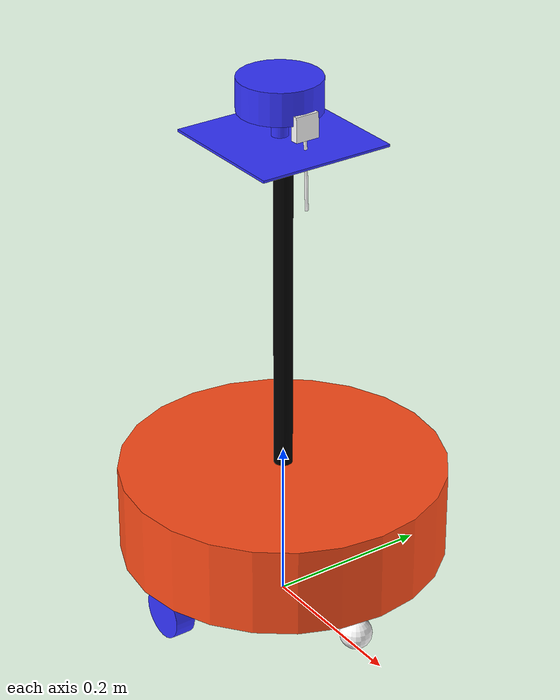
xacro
<?xml version="1.0"?>
<robot xmlns:xacro="http://www.ros.org/wiki/xacro"  name="robot">

    <xacro:arg name="use_ros2_control" default="true"/>
    <xacro:arg name="sim_mode" default="false"/>

    <xacro:include filename="robot_core.xacro" />

    <xacro:if value="$(arg use_ros2_control)">
        <xacro:include filename="ros2_control.xacro" />
    </xacro:if>
    <xacro:unless value="$(arg use_ros2_control)">
        <xacro:include filename="gazebo_control.xacro" />
    </xacro:unless>
    <xacro:include filename="lidar.xacro" />
    <xacro:include filename="depth_camera.xacro" />

</robot>

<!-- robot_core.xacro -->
<robot xmlns:xacro="http://www.ros.org/wiki/xacro" >

    <xacro:include filename="inertial_macros.xacro"/>

    <xacro:property name="chassis_radius" value="0.20"/>
    <xacro:property name="chassis_length" value="0.112"/>
    <xacro:property name="chassis_height" value="0.072"/>
    <xacro:property name="chassis_mass" value="2.0"/>
    <xacro:property name="tripod_radius" value="0.0115"/>
    <xacro:property name="tripod_length" value="0.441"/>
    <xacro:property name="tripod_mass" value="1.0"/>
    <xacro:property name="holder_length" value="0.17"/>
    <xacro:property name="holder_width" value="0.17"/>
    <xacro:property name="holder_height" value="0.003"/>
    <xacro:property name="holder_mass" value="0.1"/>
    <xacro:property name="wheel_radius" value="0.03185"/>
    <xacro:property name="wheel_thickness" value="0.0255"/>
    <xacro:property name="wheel_mass" value="0.05"/>
    <xacro:property name="wheel_offset_x" value="0.0"/>
    <xacro:property name="wheel_offset_y" value="0.164"/>
    <xacro:property name="wheel_offset_z" value="${-chassis_height-chassis_length/2+wheel_radius}"/>
    <xacro:property name="caster_wheel_radius" value="0.02"/>
    <xacro:property name="caster_wheel_mass" value="0.04"/>
    <xacro:property name="caster_wheel_offset_x" value="0.1515"/>
    <xacro:property name="caster_wheel_offset_z" value="${wheel_offset_z - wheel_radius + caster_wheel_radius}"/>

    <material name="white">
        <color rgba="1 1 1 1" />
    </material>

    <material name="orange">
        <color rgba="1 0.3 0.1 1"/>
    </material>

    <material name="blue">
        <color rgba="0.2 0.2 1 1"/>
    </material>

    <material name="black">
        <color rgba="0 0 0 1"/>
    </material>

    <material name="red">
        <color rgba="1 0 0 1"/>
    </material>

    <!-- BASE LINK -->

    <link name="base_link">

    </link>

    <!-- BASE_FOOTPRINT LINK -->

    <joint name="base_footprint_joint" type="fixed">
        <parent link="base_link"/>
        <child link="base_footprint"/>
        <origin xyz="0 0 0" rpy="0 0 0"/>
    </joint>

    <link name="base_footprint">
    </link>

    <!-- CHASSIS LINK -->

    <joint name="chassis_joint" type="fixed">
        <parent link="base_link"/>
        <child link="chassis"/>
        <origin xyz="0 0 ${chassis_height+chassis_length/2}"/>
    </joint>

    <link name="chassis">
        <visual>
            <origin xyz = "0 0 0"/>
            <geometry>
                <cylinder length="${chassis_length}" radius="${chassis_radius}"/>
            </geometry>
            <material name="orange"/>
        </visual>
        <collision>
            <origin xyz = "0 0 ${chassis_length/2}"/>
            <geometry>
                <cylinder length="${chassis_length}" radius="${chassis_radius}"/>
            </geometry>
        </collision>
        <xacro:inertial_cylinder mass="${chassis_mass}" length="${chassis_length}" radius="${chassis_radius}">
            <origin xyz="0 0 ${chassis_length/2}" rpy="0 0 0"/>
        </xacro:inertial_cylinder>
    </link>

    <gazebo reference="chassis">
        <material>Gazebo/Orange</material>
    </gazebo>

    <!-- TRIPOD -->

    <joint name="tripod_joint" type="fixed">
        <parent link="chassis"/>
        <child link="tripod"/>
        <origin xyz="0 0 ${chassis_height/2}"/>
    </joint>

    <link name="tripod">
        <visual>
            <origin xyz = "0 0 ${tripod_length/2}"/>
            <geometry>
                <cylinder length="${tripod_length}" radius="${tripod_radius}"/>
            </geometry>
            <material name="black"/>
        </visual>
        <collision>
            <origin xyz = "0 0 ${tripod_length/2}"/>
            <geometry>
                <cylinder length="${tripod_length}" radius="${tripod_radius}"/>
            </geometry>
        </collision>
        <xacro:inertial_cylinder mass="${tripod_mass}" length="${tripod_length}" radius="${tripod_radius}">
            <origin xyz="0 0 ${tripod_length/2}" rpy="0 0 0"/>
        </xacro:inertial_cylinder>
    </link>

    <gazebo reference="tripod">
        <material>Gazebo/Black</material>
    </gazebo>

    <!-- HOLDER -->

    <joint name="holder_joint" type="fixed">
        <parent link="tripod"/>
        <child link="holder"/>
        <origin xyz="0 0 ${tripod_length}"/>
    </joint>

    <link name="holder">
        <visual>
            <origin xyz = "0 0 ${holder_height/2}"/>
            <geometry>
                <box size="${holder_length} ${holder_width} ${holder_height}"/>
            </geometry>
            <material name="blue"/>
        </visual>
        <collision>
            <origin xyz = "0 0 ${holder_length/2}"/>
            <geometry>
                <box size="${holder_length} ${holder_width} ${holder_height}"/>
            </geometry>
        </collision>
        <xacro:inertial_box mass="${holder_mass}" x="${holder_length}" y="${holder_width}" z="${holder_height}">
            <origin xyz="${holder_length/2} 0 ${holder_height/2}" rpy="0 0 0"/>
        </xacro:inertial_box>
    </link>

    <gazebo reference="holder">
        <material>Gazebo/Blue</material>
    </gazebo>

    <!-- LEFT WHEEL LINK -->

    <joint name="left_wheel_joint" type="continuous">
        <parent link="chassis"/>
        <child link="left_wheel"/>
        <origin xyz="0 ${wheel_offset_y} ${wheel_offset_z}" rpy="-${pi/2} 0 0" />
        <axis xyz="0 0 1"/>
    </joint>

    <link name="left_wheel">
        <visual>
            <geometry>
                <cylinder radius="${wheel_radius}" length="${wheel_thickness}"/>
            </geometry>
            <material name="blue"/>
        </visual>
        <collision>
            <geometry>
                <sphere radius="${wheel_radius}"/>
            </geometry>
        </collision>
        <xacro:inertial_cylinder mass="${wheel_mass}" length="${wheel_thickness}" radius="${wheel_radius}">
            <origin xyz="0 0 0" rpy="0 0 0"/>
        </xacro:inertial_cylinder>
    </link>

    <gazebo reference="left_wheel">
        <material>Gazebo/Blue</material>
    </gazebo>

    <!-- RIGHT WHEEL LINK -->

    <joint name="right_wheel_joint" type="continuous">
        <parent link="chassis"/>
        <child link="right_wheel"/>
        <origin xyz="0 ${-wheel_offset_y} ${wheel_offset_z}" rpy="${pi/2} 0 0" />
        <axis xyz="0 0 -1"/>
    </joint>

    <link name="right_wheel">
        <visual>
            <geometry>
                <cylinder radius="${wheel_radius}" length="${wheel_thickness}"/>
            </geometry>
            <material name="blue"/>
        </visual>
        <collision>
            <geometry>
                <sphere radius="${wheel_radius}"/>
            </geometry>
        </collision>
        <xacro:inertial_cylinder mass="${wheel_mass}" length="${wheel_thickness}" radius="${wheel_radius}">
            <origin xyz="0 0 0" rpy="0 0 0"/>
        </xacro:inertial_cylinder>
    </link>

    <gazebo reference="right_wheel">
        <material>Gazebo/Blue</material>
    </gazebo>

    <!-- FRONT CASTER WHEEL LINK -->

    <joint name="front_caster_wheel_joint" type="fixed">
        <parent link="chassis"/>
        <child link="front_caster_wheel"/>
        <origin xyz="${caster_wheel_offset_x} 0 ${caster_wheel_offset_z}"/>
    </joint>

    <link name="front_caster_wheel">
        <visual>
            <geometry>
                <sphere radius="${caster_wheel_radius}"/>
            </geometry>
            <material name="white"/>
        </visual>
        <collision>
            <geometry>
                <sphere radius="${caster_wheel_radius}"/>
            </geometry>
        </collision>
        <xacro:inertial_sphere mass="${caster_wheel_mass}" radius="${caster_wheel_radius}">
            <origin xyz="0 0 0" rpy="0 0 0"/>
        </xacro:inertial_sphere>
    </link>

    <gazebo reference="front_caster_wheel">
        <material>Gazebo/White</material>
        <mu1 value="0.001"/>
        <mu2 value="0.001"/>
    </gazebo>

    <!-- REAR CASTER WHEEL LINK -->

    <joint name="rear_caster_wheel_joint" type="fixed">
        <parent link="chassis"/>
        <child link="rear_caster_wheel"/>
        <origin xyz="${-caster_wheel_offset_x} 0 ${caster_wheel_offset_z}"/>
    </joint>

    <link name="rear_caster_wheel">
        <visual>
            <geometry>
                <sphere radius="${caster_wheel_radius}"/>
            </geometry>
            <material name="white"/>
        </visual>
        <collision>
            <geometry>
                <sphere radius="${caster_wheel_radius}"/>
            </geometry>
        </collision>
        <xacro:inertial_sphere mass="${caster_wheel_mass}" radius="${caster_wheel_radius}">
            <origin xyz="0 0 0" rpy="0 0 0"/>
        </xacro:inertial_sphere>
    </link>

    <gazebo reference="rear_caster_wheel">
        <material>Gazebo/White</material>
        <mu1 value="0.001"/>
        <mu2 value="0.001"/>
    </gazebo>

</robot>

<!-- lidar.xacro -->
<robot xmlns:xacro="http://www.ros.org/wiki/xacro" >

    <joint name="laser_joint" type="fixed">
        <parent link="camera_color_frame"/>
        <child link="laser_frame"/>
        <origin xyz="-0.0475 0 0.025" rpy="0 0.03844 -0.041866"/>
    </joint>

    <link name="laser_frame">
        <visual>
            <geometry>
                <cylinder radius="0.05" length="0.04"/>
            </geometry>
            <material name="blue"/>
        </visual>
        <visual>
            <origin xyz="0 0 -0.05"/>
            <geometry>
                <cylinder radius="0.01" length="0.1"/>
            </geometry>
            <material name="blue"/>
        </visual>
        <collision>
            <geometry>
                <cylinder radius="0.05" length="0.04"/>
            </geometry>
        </collision>
        <xacro:inertial_cylinder mass="0.1" length="0.04" radius="0.05">
            <origin xyz="0 0 0" rpy="0 0 0"/>
        </xacro:inertial_cylinder>
    </link>

    <gazebo reference="laser_frame">
        <material>Gazebo/Blue</material>

        <sensor name="laser" type="ray">
            <pose> 0 0 0 0 0 0 </pose>
            <visualize>false</visualize>
            <update_rate>10</update_rate>
            <ray>
                <scan>
                    <horizontal>
                        <samples>667</samples>
                        <min_angle>-2.0944</min_angle>
                        <max_angle>2.0944</max_angle>
                    </horizontal>
                </scan>
                <range>
                    <min>0.06</min>
                    <max>5.6</max>
                </range>
            </ray>
            <plugin name="laser_controller" filename="libgazebo_ros_ray_sensor.so">
                <ros>
                    <argument>~/out:=scan</argument>
                </ros>
                <output_type>sensor_msgs/LaserScan</output_type>
                <frame_name>laser_frame</frame_name>
            </plugin>
        </sensor>
    </gazebo>

</robot>

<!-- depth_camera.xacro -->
<robot xmlns:xacro="http://www.ros.org/wiki/xacro" >

    <joint name="camera_joint" type="fixed">
        <parent link="holder"/>
        <child link="camera_color_frame"/>
        <origin xyz="0.042 0 0.03" rpy="0 -0.03844 0"/>
    </joint>

    <link name="camera_color_frame">
        <visual>
            <geometry>
                <box size="0.010 0.03 0.03"/>
            </geometry>
            <material name="white"/>
        </visual>
        <visual>
            <origin xyz="0 0 -0.05"/>
            <geometry>
                <cylinder radius="0.002" length="0.1"/>
            </geometry>
            <material name="white"/>
        </visual>
    </link>

    <joint name="camera_optical_joint" type="fixed">
        <parent link="camera_color_frame"/>
        <child link="camera_color_optical_frame"/>
        <origin xyz="0 0 0" rpy="${-pi/2} 0 ${-pi/2}"/>
    </joint>

    <link name="camera_color_optical_frame"></link>

    <gazebo reference="camera_color_frame">
        <material>Gazebo/White</material>

        <sensor name="camera" type="depth">
            <pose> 0 0 0 0 0 0 </pose>
            <visualize>true</visualize>
            <update_rate>10</update_rate>
            <camera>
                <horizontal_fov>0.95668</horizontal_fov>
                <image>
                    <format>B8G8R8</format>
                    <width>320</width>
                    <height>240</height>
                </image>
                <clip>
                    <near>0.05</near>
                    <far>8.0</far>
                </clip>
            </camera>
            <plugin name="camera_controller" filename="libgazebo_ros_camera.so">
                <frame_name>camera_link_optical</frame_name>
                <min_depth>0.1</min_depth>
                <max_depth>100.0</max_depth>
            </plugin>
        </sensor>
    </gazebo>

</robot>
